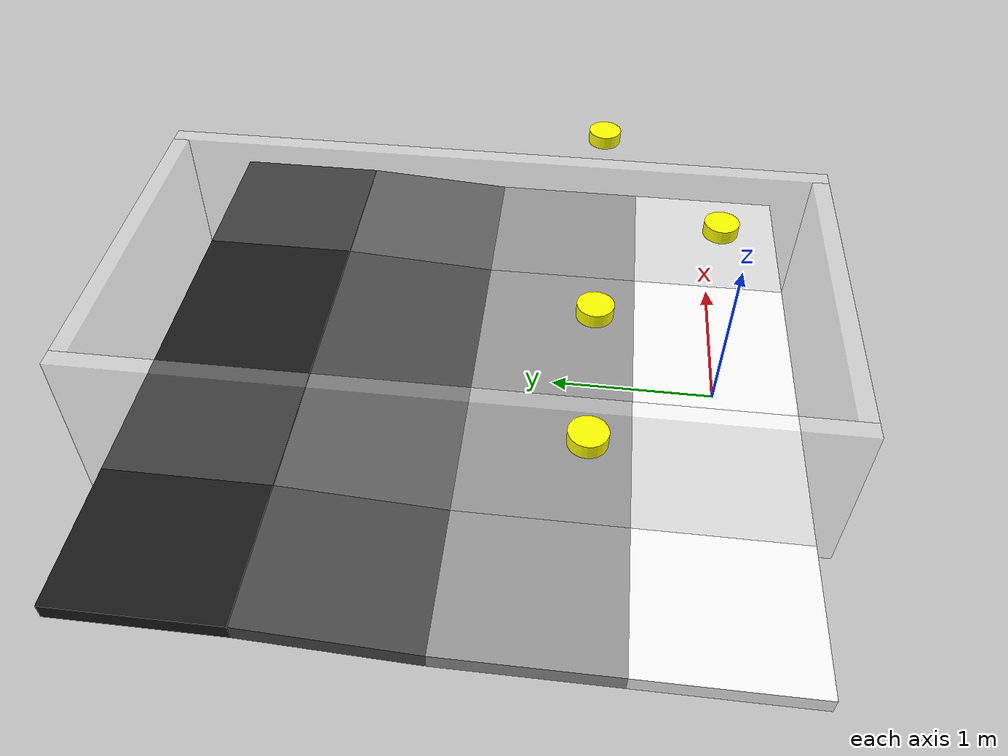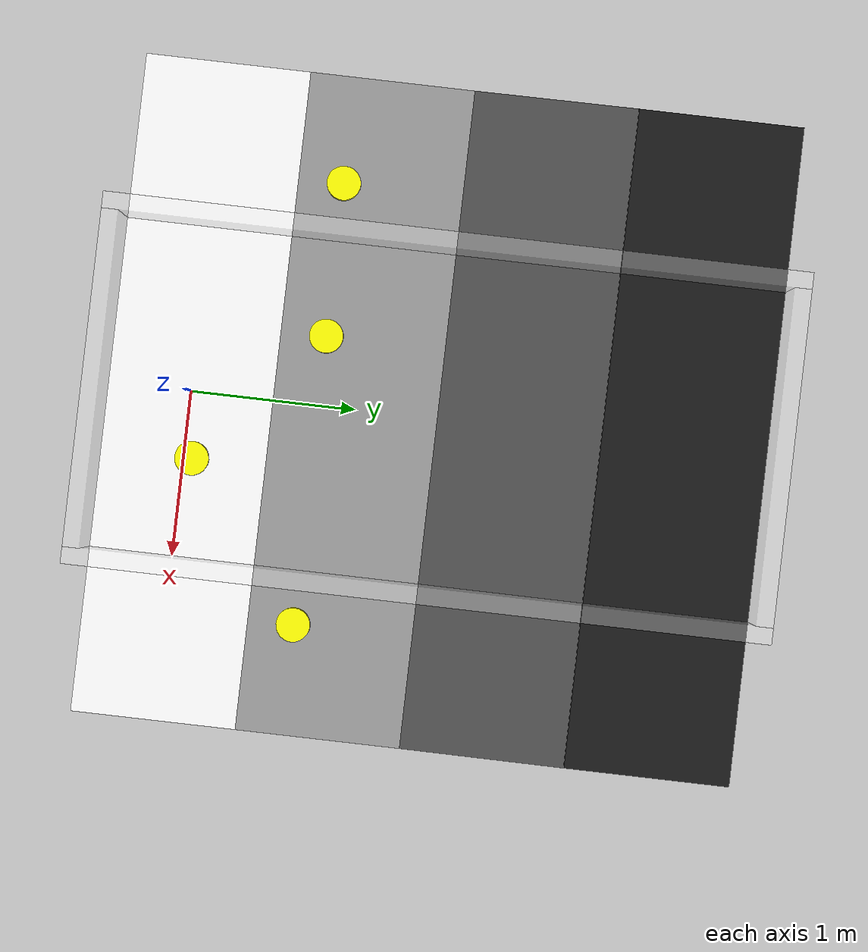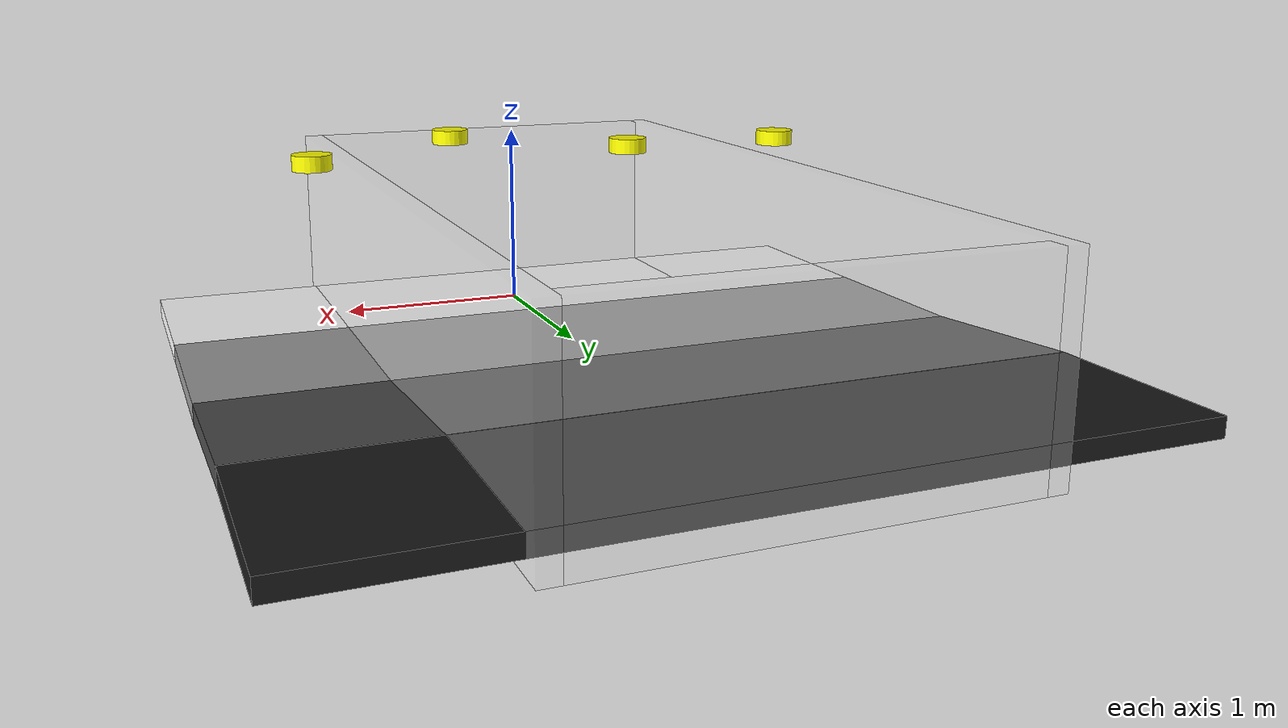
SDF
<?xml version="1.0" ?>
<sdf version="1.9">
	<world name="arena">

		<scene>
			<ambient>1 1 1 1</ambient>
			<grid>0</grid>
		</scene>

		<physics type="ode">
			<max_step_size>0.003</max_step_size>
			<real_time_factor>1.0</real_time_factor>
		</physics>

		<gazebo>
			<plugin file_name="libignition-gazebo-contact-system.so" name="ignition::gazebo::systems::Contact"/>
		</gazebo>
		<gazebo>
			<plugin file_name="libignition-gazebo-sensors-system.so" name="ignition::gazebo::systems::Sensors">
				<render_engine>ogre</render_engine>
			</plugin>
		</gazebo>

		<plugin name='ignition::gazebo::systems::Physics' filename='libignition-gazebo-physics-system.so'/>
    		<plugin name='ignition::gazebo::systems::UserCommands' filename='libignition-gazebo-user-commands-system.so'/>
    		<plugin name='ignition::gazebo::systems::SceneBroadcaster' filename='libignition-gazebo-scene-broadcaster-system.so'/>

      		<plugin filename="libignition-gazebo-contact-system.so" name="ignition::gazebo::systems::Contact"></plugin>

      		<plugin filename="libignition-gazebo-sensors-system.so" name="ignition::gazebo::systems::Sensors">
        		<render_engine>ogre</render_engine>
      	</plugin>

		<model name="lights">
			<static>1</static>

			<model name="light1">
				<pose>0 -0.6 1.5 0 0 0</pose>
				<link name="link_light1">
					<light type="point" name="point_light1">
						<intensity>1</intensity>
						<diffuse>1 1 0 1</diffuse>
						<specular>.1 .1 .1 1</specular>
						<attenuation>
						<range>4</range>
						<linear>1</linear>
						<constant>0.8</constant>
						<quadratic>0</quadratic>
						</attenuation>
						<cast_shadows>false</cast_shadows>
					</light>
				</link>
			</model>

		</model>

		<include>
			<uri>ground.sdf</uri>
		</include>
		<include>
			<uri>walls.sdf</uri>
		</include>

		<model name="objects">

			<!-- include objects-->

			<model name ="dummy_object">

				<static>1</static>

				<pose> 0 3 3 0 0 0 </pose>

				<link name="dummy_object">
				</link>

			</model>

			<include>/model/objects/pose
				<uri>object.sdf</uri>
				<name>object1</name>
				<pose>0.4 0.1 1 0 0 0</pose>
			</include>

			<include>
				<uri>object.sdf</uri>/home/paolo
				<name>object2</name>
				<pose>-0.4 0.8 1 0 0 0</pose>
			</include>

			<include>
				<uri>object.sdf</uri>
				<name>object3</name>
				<pose>1.3 0.8 1 0 0 0</pose>
			</include>

			<include>
				<uri>object.sdf</uri>
				<name>object4</name>
				<pose>-1.3 0.8 1 0 0 0</pose>
			</include>

			<plugin filename="libignition-gazebo-pose-publisher-system" name="ignition::gazebo::systems::PosePublisher">
				<publish_link_pose>false</publish_link_pose>
				<publish_model_pose>false</publish_model_pose>
				<publish_nested_model_pose>true</publish_nested_model_pose>
				<use_pose_vector_msg>true</use_pose_vector_msg>
				<publish_visual_pose>false</publish_visual_pose>
				<update_frequency>2</update_frequency>
			</plugin>

		</model>

	</world>
</sdf>

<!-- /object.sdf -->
<sdf version="1.9">

		<model name ="object">

			<link name="link_object">

				<visual name="visual_object">
					<geometry>
						<cylinder>
							<radius>.1</radius>
							<length>0.08</length>
						</cylinder>
					</geometry>
					<material>
						<diffuse>1 1 0 1</diffuse>
					</material>
				</visual>

				<collision name="collision_object">
					<geometry>
						<cylinder>
							<radius>.1</radius>
							<length>0.08</length>
						</cylinder>
					</geometry>

					<surface>
						<friction>
							<ode>
								<mu>0.05</mu>
							</ode>
						</friction>
					</surface>

				</collision>

			</link>
		</model>

	</sdf>

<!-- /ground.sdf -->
<sdf version="1.9">
	<model name="ground">
		<static>true</static>
		<link name="link_lower_area">
			<pose>0 0 0 0 0 0</pose>
			<visual name="nest_area">
				<pose>0 0 0 0 0 0</pose>
				<geometry>
					<box>
						<size>4.0 1.0 0.1</size>
					</box>
				</geometry>
				<material>
					<diffuse>1 1 1 1</diffuse>
				</material>
			</visual>
			<visual name="cache_area">
				<pose>0 1.0 0 0 0 0</pose>
				<geometry>
					<box>
						<size>4.0 1.0 0.1</size>
					</box>
				</geometry>
				<material>
					<diffuse>0.6 0.6 0.6 1</diffuse>
				</material>
			</visual>
			<collision name="collision_lower_area">
				<pose>0 0.5 0 0 0 0</pose>
				<geometry>
					<box>
						<size>4.0 2.0 0.1</size>
					</box>
				</geometry>
			</collision>
		</link>
		<link name="link_slope">
			<pose relative_to="joint_cache_slope">0 0.5 0 0 0 0</pose>
			<visual name="visual_slope">
				<geometry>
					<box>
						<size>4.0 1.0 0.1</size>
					</box>
				</geometry>
				<material>
					<diffuse>0.3 0.3 0.3 1</diffuse>
				</material>
			</visual>
			<collision name="collision_slope">
				<geometry>
					<box>
						<size>4.0 1.0 0.1</size>
					</box>
				</geometry>
			</collision>
		</link>
		<link name="link_source_area">
			<pose relative_to="joint_slope_source">0 0.5 0 0 0 0</pose>
			<visual name="visual_source_area">
				<geometry>
					<box>
						<size>4.0 1.0 0.1</size>
					</box>
				</geometry>
				<material>
					<diffuse>0.1 0.1 0.1 1</diffuse>
				</material>
			</visual>
			<collision name="collision_source_area">
				<geometry>
					<box>
						<size>4.0 1.0 0.1</size>
					</box>
				</geometry>
			</collision>
		</link>
		<joint name="joint_cache_slope" type="fixed">
			<parent>link_lower_area</parent>
			<child>link_slope</child>
			<pose relative_to="link_lower_area">0 1.5 0 0.07 0  0</pose>
			<axis>
				<xyz>1 0 0</xyz>
			</axis>
		</joint>
		<joint name="joint_slope_source" type="fixed">
			<parent>link_slope</parent>
			<child>link_source_area</child>
			<pose relative_to="link_slope">0 0.5 0 -0.07 0 0</pose>
			<axis>
				<xyz>1 0 0</xyz>
			</axis>
		</joint>
	</model>
</sdf>

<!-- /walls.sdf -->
<sdf version="1.9">
	<model name="walls">
		<static>true</static>
		<link name="link_wall_nest">
			<pose>0 -0.55 0.45 0 0 0</pose>
			<visual name="visual_nest_wall">
				<geometry>
					<box>
						<size>2.0 0.1 1</size>
					</box>
				</geometry>
				<material>
					<diffuse>1 1 1 0.3</diffuse>
				</material>
			</visual>
			<collision name="collision_nest_wall">
				<geometry>
					<box>
						<size>2.0 0.1 1</size>
					</box>
				</geometry>
			</collision>
		</link>
		<link name="link_wall_source">
			<pose relative_to="link_wall_nest">0 4.097551000253279 0 0 0 0</pose>
			<visual name="visual_source_wall">
				<geometry>
					<box>
						<size>2.0 0.1 1</size>
					</box>
				</geometry>
				<material>
					<diffuse>1 1 1 0.3</diffuse>
				</material>
			</visual>
			<collision name="collision_source_wall">
				<geometry>
					<box>
						<size>2.0 0.1 1</size>
					</box>
				</geometry>
			</collision>
		</link>
		<link name="link_edge_wall1">
			<pose relative_to="link_wall_nest">1.05 2.0487755001266397 0 0 0 1.5707963267948966</pose>
			<visual name="visual_edge_wall1">
				<geometry>
					<box>
						<size>4.19755100025328 0.1 1</size>
					</box>
				</geometry>
				<material>
					<diffuse>1 1 1 0.3</diffuse>
				</material>
			</visual>
			<collision name="collision_edge_wall1">
				<geometry>
					<box>
						<size>4.19755100025328 0.1 1</size>
					</box>
				</geometry>
			</collision>
		</link>
		<link name="link_edge_wall2">
			<pose relative_to="link_edge_wall1">0 2.0999999999999996 0 0 0 0</pose>
			<visual name="visual_edge_wall2">
				<geometry>
					<box>
						<size>4.19755100025328 0.1 1</size>
					</box>
				</geometry>
				<material>
					<diffuse>1 1 1 0.3</diffuse>
				</material>
			</visual>
			<collision name="collision_edge_wall2">
				<geometry>
					<box>
						<size>4.19755100025328 0.1 1</size>
					</box>
				</geometry>
			</collision>
		</link>
	</model>
</sdf>
